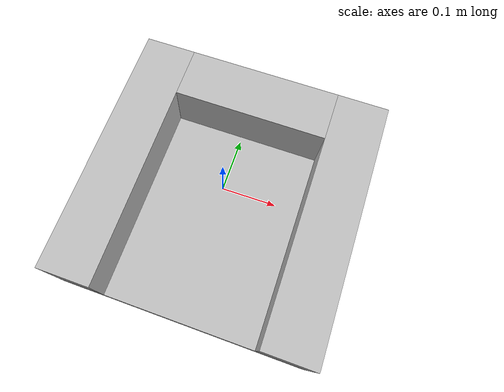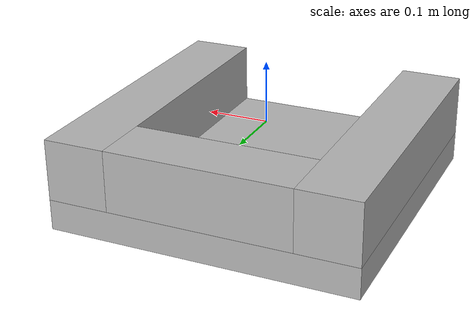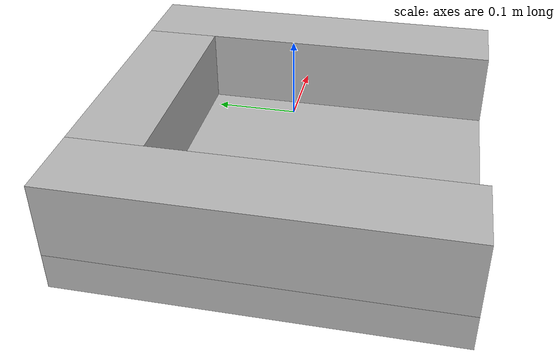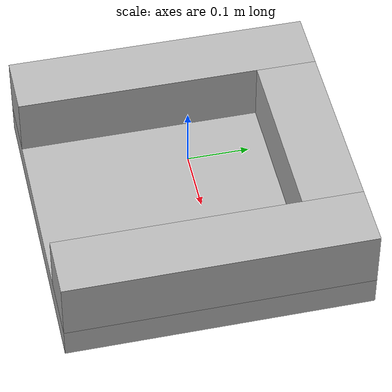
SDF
<?xml version="1.0"?>
<sdf version="1.7">
<world name="w">
  <model name="bin_model">
    <!--
    Axes:
      +X - Pointing towards front
      +Y - Pointing to left side
      +Z - Up
    Origin:
      (0, 0, 0) at the center bottom of the bin
    -->
    <link name="bin_base">
      <inertial>
        <mass>18.70</mass>
        <inertia>
          <ixx>1.0</ixx><ixy>0</ixy><ixz>0</ixz>
          <iyy>1.0</iyy><iyz>0</iyz><izz>1.0</izz>
        </inertia>
      </inertial>

      <!--bottom-->
      <visual name="visual">
        <pose> -0.0 -0.0 -0.1 0 0 0</pose>
        <geometry>
          <box>
            <size>0.5 0.5 0.05</size>
          </box>
        </geometry>
      </visual>
      <collision name="bottom">
        <pose>-0.0 -0.0 -0.1 0 0 0</pose>
        <geometry>
          <box>
            <size>0.5 0.5 0.05</size>
          </box>
        </geometry>
    </collision>

    <!--front/back wide walls-->
      <visual name="front_v">
        <pose>-0.2 -0.0 -0.025 0 0 0</pose>
        <geometry>
          <box>
            <size>0.1 0.5 0.1</size>
          </box>
        </geometry>
      </visual>
      <collision name="front">
        <pose>-0.2 -0.0 -0.025 0 0 0</pose>
        <geometry>
          <box>
            <size>0.1 0.5 0.1</size>
          </box>
        </geometry>
    </collision>
      <visual name="back">
        <pose>0.2 -0.0 -0.025 0 0 0</pose>
        <geometry>
          <box>
            <size>0.1 0.5 0.1</size>
          </box>
        </geometry>
      </visual>
      <collision name="back">
        <pose>0.2 -0.0 -0.025 0 0 0</pose>
        <geometry>
          <box>
            <size>0.1 0.5 0.1</size>
          </box>
        </geometry>
    </collision>
    <!--left right walls-->
    <visual name="left">
        <pose>0.0 0.2 -0.025 0 0 0</pose>
        <geometry>
          <box>
            <size>0.3 0.1 0.1</size>
          </box>
        </geometry>
      </visual>
      <collision name="left">
        <pose>0.0 0.2 -0.025 0 0 0</pose>
        <geometry>
          <box>
            <size>0.3 0.1 0.1</size>
          </box>
        </geometry>
    </collision>

    </link>
</model>
</world>
</sdf>
